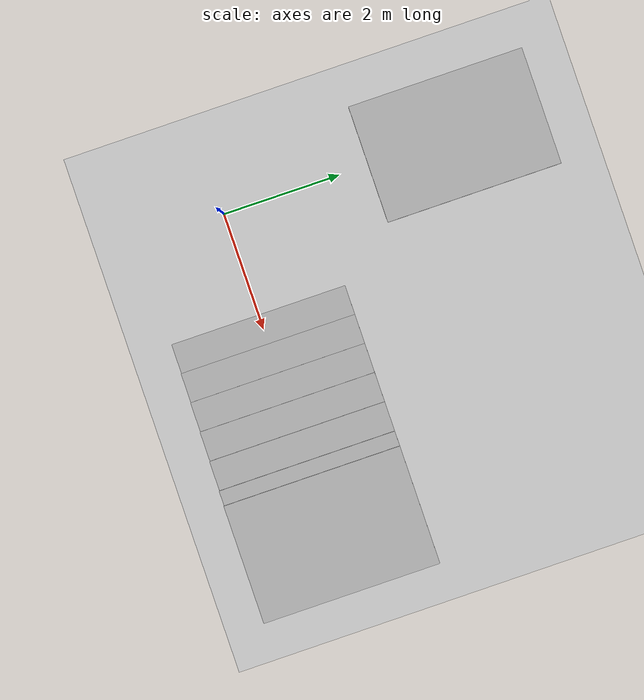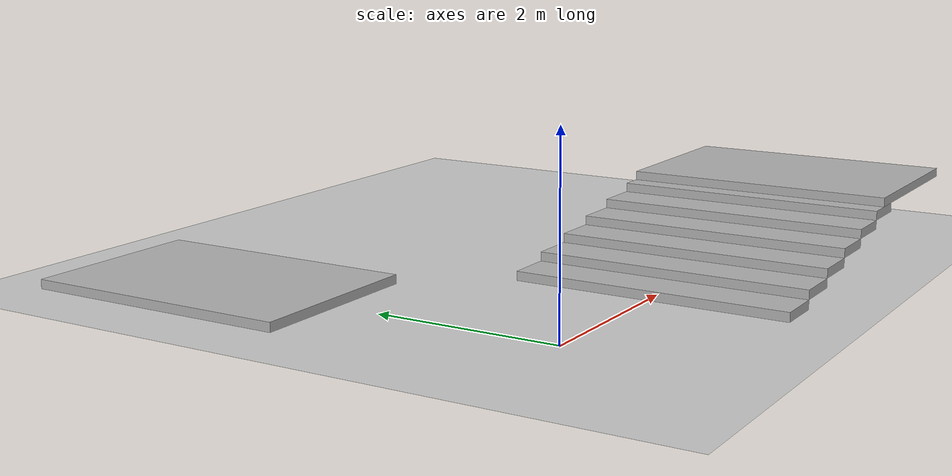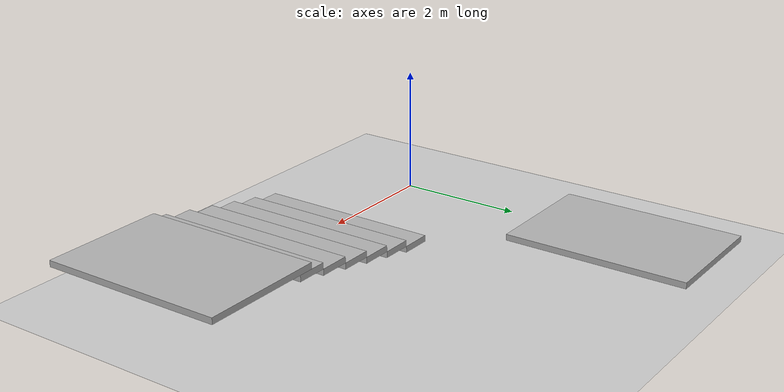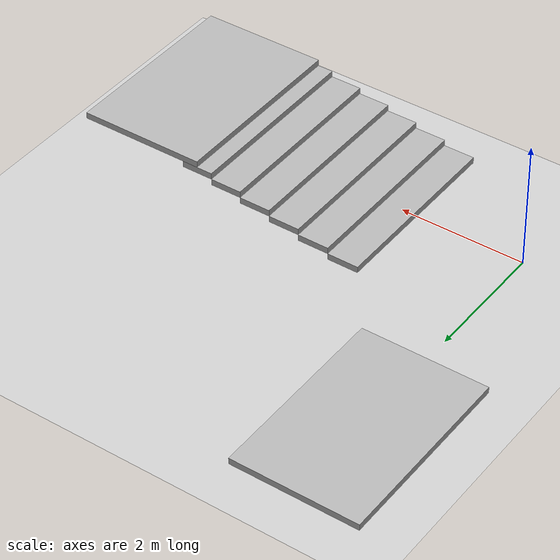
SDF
<?xml version="1.0" ?>
<sdf version='1.10'>
  <world name='step'>
    <physics name='1ms' type='ignored'>
      <max_step_size>0.001</max_step_size>
      <real_time_factor>1</real_time_factor>
    </physics>

    <light type="directional" name="sun">
      <cast_shadows>true</cast_shadows>
      <pose>0 0 10 0 0 0</pose>
      <diffuse>0.8 0.8 0.8 1</diffuse>
      <specular>0.2 0.2 0.2 1</specular>
      <attenuation>
        <range>1000</range>
        <constant>0.9</constant>
        <linear>0.01</linear>
        <quadratic>0.001</quadratic>
      </attenuation>
      <direction>-0.5 0.1 -0.9</direction>
    </light>

    <model name='ground_plane'>
      <static>true</static>
      <link name='link'>
        <collision name='collision'>
          <geometry>
            <plane>
              <normal>0 0 1</normal>
              <size>100 100</size>
            </plane>
          </geometry>
          <surface>
            <friction>
              <ode/>
            </friction>
            <bounce/>
            <contact/>
          </surface>
        </collision>
        <visual name='visual'>
          <geometry>
            <plane>
              <normal>0 0 1</normal>
              <size>100 100</size>
            </plane>
          </geometry>
          <material>
            <ambient>0.800000012 0.800000012 0.800000012 1</ambient>
            <diffuse>0.800000012 0.800000012 0.800000012 1</diffuse>
            <specular>0.800000012 0.800000012 0.800000012 1</specular>
          </material>
        </visual>
        <pose>0 0 0 0 0 0</pose>
        <inertial>
          <pose>0 0 0 0 0 0</pose>
          <mass>1</mass>
          <inertia>
            <ixx>1</ixx>
            <ixy>0</ixy>
            <ixz>0</ixz>
            <iyy>1</iyy>
            <iyz>0</iyz>
            <izz>1</izz>
          </inertia>
        </inertial>
        <enable_wind>false</enable_wind>
      </link>
      <pose>0 0 0 0 0 0</pose>
      <self_collide>false</self_collide>
    </model>

    <!-- Staircase made of boxes -->
    <model name='stair_1'>
      <pose>2 0 0.05 0 0 0</pose>
      <link name='stair_1_link'>
        <inertial>
          <inertia>
            <ixx>0.755208</ixx>
            <ixy>0</ixy>
            <ixz>0</ixz>
            <iyy>0.0260417</iyy>
            <iyz>0</iyz>
            <izz>0.770833</izz>
          </inertia>
          <mass>1</mass>
          <pose>0 0 0 0 0 0</pose>
        </inertial>
        <collision name='stair_1_collision'>
          <geometry>
            <box>
              <size>0.5 3 0.1</size>
            </box>
          </geometry>
          <surface>
            <friction>
              <ode/>
            </friction>
            <bounce/>
            <contact/>
          </surface>
        </collision>
        <visual name='stair_1_visual'>
          <geometry>
            <box>
              <size>0.5 3 0.1</size>
            </box>
          </geometry>
          <material>
            <ambient>0.300000012 0.300000012 0.300000012 1</ambient>
            <diffuse>0.699999988 0.699999988 0.699999988 1</diffuse>
            <specular>1 1 1 1</specular>
          </material>
        </visual>
        <pose>0 0 0 0 0 0</pose>
        <enable_wind>false</enable_wind>
      </link>
      <static>true</static>
      <self_collide>false</self_collide>
    </model>

    <model name='stair_2'>
      <pose>2.5 0 0.15 0 0 0</pose>
      <link name='stair_2_link'>
        <inertial>
          <inertia>
            <ixx>0.755208</ixx>
            <ixy>0</ixy>
            <ixz>0</ixz>
            <iyy>0.0260417</iyy>
            <iyz>0</iyz>
            <izz>0.770833</izz>
          </inertia>
          <mass>1</mass>
          <pose>0 0 0 0 0 0</pose>
        </inertial>
        <collision name='stair_2_collision'>
          <geometry>
            <box>
              <size>0.5 3 0.1</size>
            </box>
          </geometry>
          <surface>
            <friction>
              <ode/>
            </friction>
            <bounce/>
            <contact/>
          </surface>
        </collision>
        <visual name='stair_2_visual'>
          <geometry>
            <box>
              <size>0.5 3 0.1</size>
            </box>
          </geometry>
          <material>
            <ambient>0.300000012 0.300000012 0.300000012 1</ambient>
            <diffuse>0.699999988 0.699999988 0.699999988 1</diffuse>
            <specular>1 1 1 1</specular>
          </material>
        </visual>
        <pose>0 0 0 0 0 0</pose>
        <enable_wind>false</enable_wind>
      </link>
      <static>true</static>
      <self_collide>false</self_collide>
    </model>

    <model name='stair_3'>
      <pose>3.0 0 0.25 0 0 0</pose>
      <link name='stair_3_link'>
        <inertial>
          <inertia>
            <ixx>0.755208</ixx>
            <ixy>0</ixy>
            <ixz>0</ixz>
            <iyy>0.0260417</iyy>
            <iyz>0</iyz>
            <izz>0.770833</izz>
          </inertia>
          <mass>1</mass>
          <pose>0 0 0 0 0 0</pose>
        </inertial>
        <collision name='stair_3_collision'>
          <geometry>
            <box>
              <size>0.5 3 0.1</size>
            </box>
          </geometry>
          <surface>
            <friction>
              <ode/>
            </friction>
            <bounce/>
            <contact/>
          </surface>
        </collision>
        <visual name='stair_3_visual'>
          <geometry>
            <box>
              <size>0.5 3 0.1</size>
            </box>
          </geometry>
          <material>
            <ambient>0.300000012 0.300000012 0.300000012 1</ambient>
            <diffuse>0.699999988 0.699999988 0.699999988 1</diffuse>
            <specular>1 1 1 1</specular>
          </material>
        </visual>
        <pose>0 0 0 0 0 0</pose>
        <enable_wind>false</enable_wind>
      </link>
      <static>true</static>
      <self_collide>false</self_collide>
    </model>

    <model name='stair_4'>
      <pose>3.5 0 0.35 0 0 0</pose>
      <link name='stair_4_link'>
        <inertial>
          <inertia>
            <ixx>0.755208</ixx>
            <ixy>0</ixy>
            <ixz>0</ixz>
            <iyy>0.0260417</iyy>
            <iyz>0</iyz>
            <izz>0.770833</izz>
          </inertia>
          <mass>1</mass>
          <pose>0 0 0 0 0 0</pose>
        </inertial>
        <collision name='stair_4_collision'>
          <geometry>
            <box>
              <size>0.5 3 0.1</size>
            </box>
          </geometry>
          <surface>
            <friction>
              <ode/>
            </friction>
            <bounce/>
            <contact/>
          </surface>
        </collision>
        <visual name='stair_4_visual'>
          <geometry>
            <box>
              <size>0.5 3 0.1</size>
            </box>
          </geometry>
          <material>
            <ambient>0.300000012 0.300000012 0.300000012 1</ambient>
            <diffuse>0.699999988 0.699999988 0.699999988 1</diffuse>
            <specular>1 1 1 1</specular>
          </material>
        </visual>
        <pose>0 0 0 0 0 0</pose>
        <enable_wind>false</enable_wind>
      </link>
      <static>true</static>
      <self_collide>false</self_collide>
    </model>

    <model name='stair_5'>
      <pose>4.0 0 0.45 0 0 0</pose>
      <link name='stair_5_link'>
        <inertial>
          <inertia>
            <ixx>0.755208</ixx>
            <ixy>0</ixy>
            <ixz>0</ixz>
            <iyy>0.0260417</iyy>
            <iyz>0</iyz>
            <izz>0.770833</izz>
          </inertia>
          <mass>1</mass>
          <pose>0 0 0 0 0 0</pose>
        </inertial>
        <collision name='stair_5_collision'>
          <geometry>
            <box>
              <size>0.5 3 0.1</size>
            </box>
          </geometry>
          <surface>
            <friction>
              <ode/>
            </friction>
            <bounce/>
            <contact/>
          </surface>
        </collision>
        <visual name='stair_5_visual'>
          <geometry>
            <box>
              <size>0.5 3 0.1</size>
            </box>
          </geometry>
          <material>
            <ambient>0.300000012 0.300000012 0.300000012 1</ambient>
            <diffuse>0.699999988 0.699999988 0.699999988 1</diffuse>
            <specular>1 1 1 1</specular>
          </material>
        </visual>
        <pose>0 0 0 0 0 0</pose>
        <enable_wind>false</enable_wind>
      </link>
      <static>true</static>
      <self_collide>false</self_collide>
    </model>

    <model name='stair_6'>
      <pose>4.5 0 0.55 0 0 0</pose>
      <link name='stair_6_link'>
        <inertial>
          <inertia>
            <ixx>0.755208</ixx>
            <ixy>0</ixy>
            <ixz>0</ixz>
            <iyy>0.0260417</iyy>
            <iyz>0</iyz>
            <izz>0.770833</izz>
          </inertia>
          <mass>1</mass>
          <pose>0 0 0 0 0 0</pose>
        </inertial>
        <collision name='stair_6_collision'>
          <geometry>
            <box>
              <size>0.5 3 0.1</size>
            </box>
          </geometry>
          <surface>
            <friction>
              <ode/>
            </friction>
            <bounce/>
            <contact/>
          </surface>
        </collision>
        <visual name='stair_6_visual'>
          <geometry>
            <box>
              <size>0.5 3 0.1</size>
            </box>
          </geometry>
          <material>
            <ambient>0.300000012 0.300000012 0.300000012 1</ambient>
            <diffuse>0.699999988 0.699999988 0.699999988 1</diffuse>
            <specular>1 1 1 1</specular>
          </material>
        </visual>
        <pose>0 0 0 0 0 0</pose>
        <enable_wind>false</enable_wind>
      </link>
      <static>true</static>
      <self_collide>false</self_collide>
    </model>

    <model name='stair_7'>
      <pose>5.5 0 0.65 0 0 0</pose>
      <link name='stair_7_link'>
        <inertial>
          <inertia>
            <ixx>0.755208</ixx>
            <ixy>0</ixy>
            <ixz>0</ixz>
            <iyy>0.0260417</iyy>
            <iyz>0</iyz>
            <izz>0.770833</izz>
          </inertia>
          <mass>1</mass>
          <pose>0 0 0 0 0 0</pose>
        </inertial>
        <collision name='stair_7_collision'>
          <geometry>
            <box>
              <size>2 3 0.1</size>
            </box>
          </geometry>
          <surface>
            <friction>
              <ode/>
            </friction>
            <bounce/>
            <contact/>
          </surface>
        </collision>
        <visual name='stair_7_visual'>
          <geometry>
            <box>
              <size>2 3 0.1</size>
            </box>
          </geometry>
          <material>
            <ambient>0.300000012 0.300000012 0.300000012 1</ambient>
            <diffuse>0.699999988 0.699999988 0.699999988 1</diffuse>
            <specular>1 1 1 1</specular>
          </material>
        </visual>
        <pose>0 0 0 0 0 0</pose>
        <enable_wind>false</enable_wind>
      </link>
      <static>true</static>
      <self_collide>false</self_collide>
    </model>

     <model name='stair_8'>
      <pose>0 4 0.05 0 0 0</pose>
      <link name='stair_8_link'>
        <inertial>
          <inertia>
            <ixx>0.755208</ixx>
            <ixy>0</ixy>
            <ixz>0</ixz>
            <iyy>0.0260417</iyy>
            <iyz>0</iyz>
            <izz>0.770833</izz>
          </inertia>
          <mass>1</mass>
          <pose>0 0 0 0 0 0</pose>
        </inertial>
        <collision name='stair_8_collision'>
          <geometry>
            <box>
              <size>2 3 0.1</size>
            </box>
          </geometry>
          <surface>
            <friction>
              <ode/>
            </friction>
            <bounce/>
            <contact/>
          </surface>
        </collision>
        <visual name='stair_8_visual'>
          <geometry>
            <box>
              <size>2 3 0.1</size>
            </box>
          </geometry>
          <material>
            <ambient>0.300000012 0.300000012 0.300000012 1</ambient>
            <diffuse>0.699999988 0.699999988 0.699999988 1</diffuse>
            <specular>1 1 1 1</specular>
          </material>
        </visual>
        <pose>0 0 0 0 0 0</pose>
        <enable_wind>false</enable_wind>
      </link>
      <static>true</static>
      <self_collide>false</self_collide>
    </model>

  </world>
</sdf>
